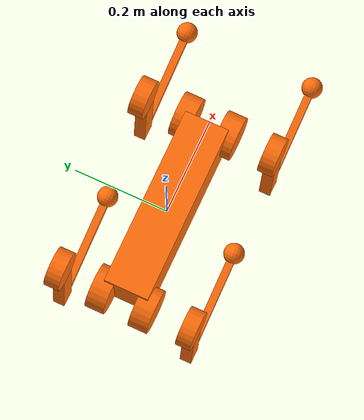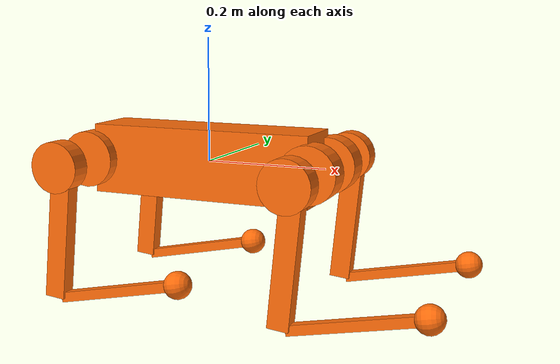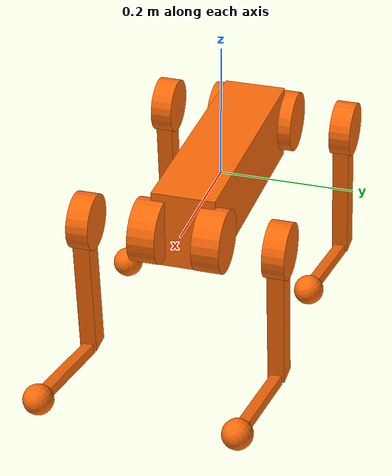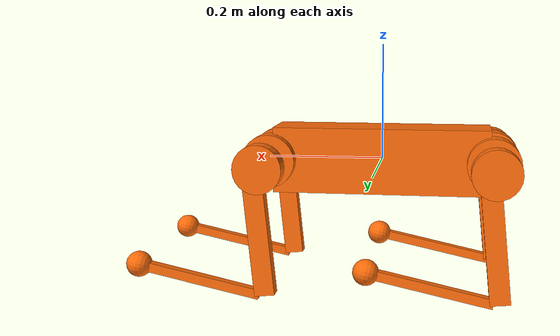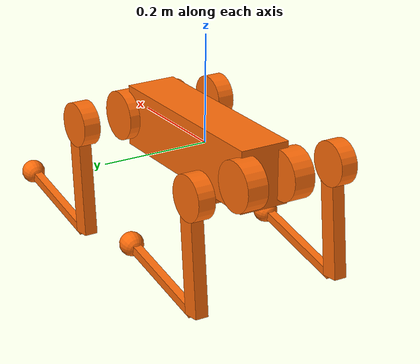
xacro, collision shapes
<?xml version="1.0"?>
<robot xmlns:xacro="http://www.ros.org/wiki/xacro" name="robot">
  <xacro:arg name="robot_type" default="go2"/>

  <xacro:include filename="$(find legged_unitree_description)/urdf/common/materials.xacro"/>
  <xacro:include filename="$(find legged_unitree_description)/urdf/common/leg.xacro"/>
  <xacro:include filename="$(find legged_unitree_description)/urdf/common/imu.xacro"/>
  <xacro:include filename="$(find legged_unitree_description)/urdf/common/gazebo_sim.xacro"/>
  <xacro:include filename="$(find legged_unitree_description)/urdf/common/ros2_control_gz.xacro"/>
  <xacro:include filename="$(find legged_unitree_description)/urdf/$(arg robot_type)/const.xacro"/>

  <!-- Gazebo-only passive dynamics. MuJoCo keeps its own MJCF defaults. -->
  <xacro:property name="damping" value="0.1"/>
  <xacro:property name="foot_radius" value="0.022"/>

  <xacro:property name="mesh_path" value="file://$(find legged_unitree_description)/meshes/$(arg robot_type)"/>

  <gazebo>
    <plugin filename="liblegged_unitree_sim.so" name="legged::sim::InitialJointPositionSetter">
      <hold_topic>/legged_initial_pose_hold</hold_topic>
      <initial_hold>false</initial_hold>
      <reset_steps>1</reset_steps>
    </plugin>
  </gazebo>

  <link name="base">
    <visual>
      <origin rpy="0 0 0" xyz="0 0 0"/>
      <geometry>
        <mesh filename="${mesh_path}/trunk.dae" scale="1 1 1"/>
      </geometry>
      <material name="orange"/>
    </visual>
    <collision>
      <origin rpy="0 0 0" xyz="0 0 0"/>
      <geometry>
        <box size="${trunk_length} ${trunk_width} ${trunk_height}"/>
      </geometry>
    </collision>
    <inertial>
      <origin rpy="0 0 0" xyz="${trunk_com_x} ${trunk_com_y} ${trunk_com_z}"/>
      <mass value="${trunk_mass}"/>
      <inertia
        ixx="${trunk_ixx}" ixy="${trunk_ixy}" ixz="${trunk_ixz}"
        iyy="${trunk_iyy}" iyz="${trunk_iyz}" izz="${trunk_izz}"/>
    </inertial>
  </link>

  <xacro:IMU connected_to="base" imu_name="unitree_imu" xyz="0 0 0" rpy="0 0 0"/>

  <xacro:leg prefix="LF" mesh_path="${mesh_path}" mirror="1" mirror_dae="True" front_hind="1" front_hind_dae="True">
    <origin rpy="0 0 0" xyz="${leg_offset_x} ${leg_offset_y} 0"/>
  </xacro:leg>

  <xacro:leg prefix="LH" mesh_path="${mesh_path}" mirror="1" mirror_dae="True" front_hind="-1" front_hind_dae="False">
    <origin rpy="0 0 0" xyz="${-leg_offset_x} ${leg_offset_y} 0"/>
  </xacro:leg>

  <xacro:leg prefix="RF" mesh_path="${mesh_path}" mirror="-1" mirror_dae="False" front_hind="1" front_hind_dae="True">
    <origin rpy="0 0 0" xyz="${leg_offset_x} ${-leg_offset_y} 0"/>
  </xacro:leg>

  <xacro:leg prefix="RH" mesh_path="${mesh_path}" mirror="-1" mirror_dae="False" front_hind="-1" front_hind_dae="False">
    <origin rpy="0 0 0" xyz="${-leg_offset_x} ${-leg_offset_y} 0"/>
  </xacro:leg>

  <xacro:macro name="gazebo_foot_contact" params="prefix topic">
    <gazebo reference="${prefix}_calf">
      <sensor name="${prefix}_foot_contact" type="contact">
        <always_on>true</always_on>
        <update_rate>1000</update_rate>
        <contact>
          <collision>${prefix}_calf_fixed_joint_lump__${prefix}_foot_collision_collision_1</collision>
          <topic>${topic}</topic>
        </contact>
      </sensor>
    </gazebo>
  </xacro:macro>

  <xacro:gazebo_foot_contact prefix="LF" topic="/feet/LF/contacts"/>
  <xacro:gazebo_foot_contact prefix="RF" topic="/feet/RF/contacts"/>
  <!-- Keep the model's hind-leg link names (LH/RH), but expose the same
       rear-left / rear-right topic convention as the reference package. -->
  <xacro:gazebo_foot_contact prefix="LH" topic="/feet/RL/contacts"/>
  <xacro:gazebo_foot_contact prefix="RH" topic="/feet/RR/contacts"/>

  <ros2_control name="legged_imu_sensor" type="sensor">
    <hardware>
      <plugin>legged_unitree_sim/ImuStateSensor</plugin>
    </hardware>
    <sensor name="unitree_imu">
      <state_interface name="orientation.x"/>
      <state_interface name="orientation.y"/>
      <state_interface name="orientation.z"/>
      <state_interface name="orientation.w"/>
      <state_interface name="angular_velocity.x"/>
      <state_interface name="angular_velocity.y"/>
      <state_interface name="angular_velocity.z"/>
      <state_interface name="linear_acceleration.x"/>
      <state_interface name="linear_acceleration.y"/>
      <state_interface name="linear_acceleration.z"/>
      <param name="topic">/gz/imu/data</param>
    </sensor>
  </ros2_control>

  <ros2_control name="legged_contact_sensors" type="sensor">
    <hardware>
      <plugin>legged_unitree_sim/FootContactSensor</plugin>
    </hardware>
    <sensor name="FL_foot_fts">
      <state_interface name="force.x"/>
      <state_interface name="force.y"/>
      <state_interface name="force.z"/>
      <state_interface name="torque.x"/>
      <state_interface name="torque.y"/>
      <state_interface name="torque.z"/>
      <param name="topic">/feet/LF/contacts</param>
      <param name="collision">LF_calf_fixed_joint_lump__LF_foot_collision_collision_1</param>
    </sensor>
    <sensor name="FR_foot_fts">
      <state_interface name="force.x"/>
      <state_interface name="force.y"/>
      <state_interface name="force.z"/>
      <state_interface name="torque.x"/>
      <state_interface name="torque.y"/>
      <state_interface name="torque.z"/>
      <param name="topic">/feet/RF/contacts</param>
      <param name="collision">RF_calf_fixed_joint_lump__RF_foot_collision_collision_1</param>
    </sensor>
    <sensor name="RL_foot_fts">
      <state_interface name="force.x"/>
      <state_interface name="force.y"/>
      <state_interface name="force.z"/>
      <state_interface name="torque.x"/>
      <state_interface name="torque.y"/>
      <state_interface name="torque.z"/>
      <param name="topic">/feet/RL/contacts</param>
      <param name="collision">LH_calf_fixed_joint_lump__LH_foot_collision_collision_1</param>
    </sensor>
    <sensor name="RR_foot_fts">
      <state_interface name="force.x"/>
      <state_interface name="force.y"/>
      <state_interface name="force.z"/>
      <state_interface name="torque.x"/>
      <state_interface name="torque.y"/>
      <state_interface name="torque.z"/>
      <param name="topic">/feet/RR/contacts</param>
      <param name="collision">RH_calf_fixed_joint_lump__RH_foot_collision_collision_1</param>
    </sensor>
  </ros2_control>

</robot>

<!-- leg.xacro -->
<robot xmlns:xacro="http://www.ros.org/wiki/xacro">

    <xacro:include filename="$(find legged_unitree_description)/urdf/common/transmission.xacro"/>

    <xacro:macro name="leg" params="prefix mesh_path mirror mirror_dae front_hind front_hind_dae *origin">

        <joint name="${prefix}_HAA" type="revolute">
            <xacro:insert_block name="origin"/>
            <parent link="base"/>
            <child link="${prefix}_hip"/>
            <axis xyz="1 0 0"/>
            <dynamics damping="${damping}" friction="${friction}"/>
            <xacro:if value="${(mirror_dae == True)}">
                <limit effort="${hip_torque_max}" velocity="${hip_velocity_max}" lower="${hip_position_min}"
                       upper="${hip_position_max}"/>
            </xacro:if>
            <xacro:if value="${(mirror_dae == False)}">
                <limit effort="${hip_torque_max}" velocity="${hip_velocity_max}" lower="${-hip_position_max}"
                       upper="${-hip_position_min}"/>
            </xacro:if>
        </joint>

        <link name="${prefix}_hip">
            <visual>
                <xacro:if value="${(mirror_dae == True) and (front_hind_dae == True)}">
                    <origin rpy="0 0 0" xyz="0 0 0"/>
                </xacro:if>
                <xacro:if value="${(mirror_dae == False) and (front_hind_dae == True)}">
                    <origin rpy="${pi} 0 0" xyz="0 0 0"/>
                </xacro:if>
                <xacro:if value="${(mirror_dae == True) and (front_hind_dae == False)}">
                    <origin rpy="0 ${pi} 0" xyz="0 0 0"/>
                </xacro:if>
                <xacro:if value="${(mirror_dae == False) and (front_hind_dae == False)}">
                    <origin rpy="${pi} ${pi} 0" xyz="0 0 0"/>
                </xacro:if>
                <geometry>
                    <mesh filename="${mesh_path}/hip.dae"
                          scale="1 1 1"/>
                </geometry>
                <material name="orange"/>
            </visual>
            <collision>
                <origin rpy="${pi/2.0} 0 0" xyz="0 0 0"/>
                <geometry>
                    <cylinder length="${hip_length}" radius="${hip_radius}"/>
                </geometry>
            </collision>
            <inertial>
                <origin rpy="0 0 0" xyz="${hip_com_x*front_hind} ${hip_com_y*mirror} ${hip_com_z}"/>
                <mass value="${hip_mass}"/>
                <inertia
                        ixx="${hip_ixx}" ixy="${hip_ixy*mirror*front_hind}" ixz="${hip_ixz*front_hind}"
                        iyy="${hip_iyy}" iyz="${hip_iyz*mirror}"
                        izz="${hip_izz}"/>
            </inertial>
        </link>

        <joint name="${prefix}_HFE" type="revolute">
            <origin rpy="0 0 0" xyz="0 ${thigh_offset*mirror} 0"/>
            <parent link="${prefix}_hip"/>
            <child link="${prefix}_thigh"/>
            <axis xyz="0 1 0"/>
            <dynamics damping="${damping}" friction="${friction}"/>
            <limit effort="${thigh_torque_max}" velocity="${thigh_velocity_max}" lower="${thigh_position_min}"
                   upper="${thigh_position_max}"/>
        </joint>

        <link name="${prefix}_thigh">
            <visual>
                <origin rpy="0 0 0" xyz="0 0 0"/>
                <geometry>
                    <xacro:if value="${mirror_dae == True}">
                        <mesh filename="${mesh_path}/thigh.dae"
                              scale="1 1 1"/>
                    </xacro:if>
                    <xacro:if value="${mirror_dae == False}">
                        <mesh filename="${mesh_path}/thigh_mirror.dae"
                              scale="1 1 1"/>
                    </xacro:if>
                </geometry>
                <material name="orange"/>
            </visual>
            <collision>
                <origin rpy="0 ${pi/2.0+0.1} 0" xyz="${thigh_x_offset} 0 ${-thigh_length/2.0}"/>
                <geometry>
                    <box size="${thigh_length} ${thigh_width} ${thigh_height}"/>
                </geometry>
            </collision>
            <collision>
                <origin rpy="${pi/2.0} 0 0" xyz="0 ${mirror*thigh_shoulder_y_offset} 0"/>
                <geometry>
                    <cylinder length="${thigh_shoulder_length}" radius="${thigh_shoulder_radius}"/>
                </geometry>
            </collision>
            <inertial>
                <origin rpy="0 0 0" xyz="${thigh_com_x} ${thigh_com_y*mirror} ${thigh_com_z}"/>
                <mass value="${thigh_mass}"/>
                <inertia
                        ixx="${thigh_ixx}" ixy="${thigh_ixy*mirror}" ixz="${thigh_ixz}"
                        iyy="${thigh_iyy}" iyz="${thigh_iyz*mirror}"
                        izz="${thigh_izz}"/>
            </inertial>
        </link>

        <joint name="${prefix}_KFE" type="revolute">
            <origin rpy="0 0 0" xyz="0 0 ${-thigh_length}"/>
            <parent link="${prefix}_thigh"/>
            <child link="${prefix}_calf"/>
            <axis xyz="0 1 0"/>
            <dynamics damping="${damping}" friction="${friction}"/>
            <limit effort="${calf_torque_max}" velocity="${calf_velocity_max}" lower="${calf_position_min}" upper="${calf_position_max}"/>
        </joint>

        <link name="${prefix}_calf">
            <visual>
                <origin rpy="0 0 0" xyz="0 0 0"/>
                <geometry>
                    <mesh filename="${mesh_path}/calf.dae"
                          scale="1 1 1"/>
                </geometry>
                <material name="orange"/>
            </visual>
            <collision>
                <origin rpy="0 ${pi/2.0} 0" xyz="${calf_x_offset} 0 ${-calf_length/2.0}"/>
                <geometry>
                    <box size="${calf_length} ${calf_width} ${calf_height}"/>
                </geometry>
            </collision>
            <inertial>
                <origin rpy="0 0 0" xyz="${calf_com_x} ${calf_com_y} ${calf_com_z}"/>
                <mass value="${calf_mass}"/>
                <inertia
                        ixx="${calf_ixx}" ixy="${calf_ixy}" ixz="${calf_ixz}"
                        iyy="${calf_iyy}" iyz="${calf_iyz}"
                        izz="${calf_izz}"/>
            </inertial>
        </link>

        <joint name="${prefix}_foot_fixed" type="fixed">
            <origin rpy="0 0 0" xyz="0 0 ${-(calf_length)}"/>
            <parent link="${prefix}_calf"/>
            <child link="${prefix}_FOOT"/>
        </joint>

        <link name="${prefix}_FOOT">
            <visual>
                <origin rpy="0 0 0" xyz="0 0 0"/>
                <geometry>
                    <sphere radius="${foot_radius-0.01}"/>
                </geometry>
                <material name="orange"/>
            </visual>
            <collision name="${prefix}_foot_collision">
                <origin rpy="0 0 0" xyz="0 0 0"/>
                <geometry>
                    <sphere radius="${foot_radius}"/>
                </geometry>
            </collision>
            <inertial>
                <mass value="${foot_mass}"/>
                <inertia
                        ixx="${(2*foot_mass)/5.0*(foot_radius*foot_radius)}" ixy="0.0" ixz="0.0"
                        iyy="${(2*foot_mass)/5.0*(foot_radius*foot_radius)}" iyz="0.0"
                        izz="${(2*foot_mass)/5.0*(foot_radius*foot_radius)}"/>
            </inertial>
        </link>

        <gazebo reference="${prefix}_hip">
            <mu1>0.2</mu1>
            <mu2>0.2</mu2>
            <material>Gazebo/DarkGrey</material>
        </gazebo>
        <gazebo reference="${prefix}_thigh">
            <mu1>0.2</mu1>
            <mu2>0.2</mu2>
            <self_collide>0</self_collide>
            <material>Gazebo/DarkGrey</material>
            <kp value="1000000.0"/>
            <kd value="100.0"/>
        </gazebo>
        <gazebo reference="${prefix}_calf">
            <mu1>0.2</mu1>
            <mu2>0.2</mu2>
            <self_collide>1</self_collide>
        </gazebo>
        <gazebo reference="${prefix}_FOOT">
            <mu1>0.6</mu1>
            <mu2>0.6</mu2>
            <self_collide>1</self_collide>
            <material>Gazebo/DarkGrey</material>
            <kp value="1000000.0"/>
            <kd value="100.0"/>
        </gazebo>

    </xacro:macro>
</robot>

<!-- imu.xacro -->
<robot xmlns:xacro="http://www.ros.org/wiki/xacro" name="imu">
    <xacro:macro name="IMU" params="connected_to imu_name xyz:='0 0 0' rpy:='0 0 0' ">
        <!-- Imu is fixed to the base link -->
        <joint name="${imu_name}_joint" type="fixed">
            <origin xyz="${xyz}" rpy="${rpy}"/>
            <parent link="${connected_to}"/>
            <child link="${imu_name}"/>
        </joint>
        <!-- Imu link -->
        <link name="${imu_name}">
            <inertial>
                <mass value="0.01"/>
                <origin rpy="0 0 0" xyz="0 0 0"/>
                <inertia ixx="0.0001" ixy="0" ixz="0" iyy="0.0001" iyz="0" izz="0.0001"/>
            </inertial>
            <visual>
                <origin rpy="0 0 0" xyz="0 0 0"/>
                <geometry>
                    <box size="0.001 0.001 0.001"/>
                </geometry>
            </visual>
            <collision>
            	<origin rpy="0 0 0" xyz="0 0 0"/>
            	<geometry>
                 <box size=".001 .001 .001"/>
            	</geometry>
            </collision>
            <material name="orange">
                <color rgba="255 108 10 255"/>
            </material>
        </link>
        <gazebo reference="${imu_name}">
            <material>Gazebo/Orange</material>
        </gazebo>
        <gazebo reference="${imu_name}_joint">
            <disableFixedJointLumping>true</disableFixedJointLumping>
        </gazebo>
    </xacro:macro>
</robot>

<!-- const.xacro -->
<robot xmlns:xacro="http://www.ros.org/wiki/xacro">

    <!-- Constants for robot dimensions -->
    <xacro:property name="PI" value="3.1415926535897931"/>
    <xacro:property name="stick_mass" value="0.00001"/>

    <!-- simplified collision value -->
    <xacro:property name="trunk_width" value="0.0935"/>
    <xacro:property name="trunk_length" value="0.3762"/>
    <xacro:property name="trunk_height" value="0.114"/>
    <xacro:property name="hip_radius" value="0.046"/>
    <xacro:property name="hip_length" value="0.04"/>
    <xacro:property name="thigh_shoulder_radius" value="0.041"/>
    <xacro:property name="thigh_shoulder_length" value="0.032"/>

    <xacro:property name="thigh_width" value="0.0245"/>
    <xacro:property name="thigh_height" value="0.034"/>

    <!--add from go1 -->
    <xacro:property name="thigh_x_offset" value="0"/>
    <xacro:property name="thigh_shoulder_y_offset" value="0"/>
    <xacro:property name="calf_x_offset" value="0.0"/>

    <xacro:property name="calf_width" value="0.016"/>
    <xacro:property name="calf_height" value="0.016"/>
    <xacro:property name="foot_radius" value="0.02"/>
    <xacro:property name="stick_radius" value="0.01"/>
    <xacro:property name="stick_length" value="0.2"/>

    <!-- kinematic value -->
    <xacro:property name="thigh_offset" value="0.0955"/>
    <xacro:property name="thigh_length" value="0.213"/>
    <xacro:property name="calf_length" value="0.213"/>

    <!-- leg offset from trunk center value -->
    <xacro:property name="leg_offset_x" value="0.1934"/>
    <xacro:property name="leg_offset_y" value="0.0465"/>
    <xacro:property name="trunk_offset_z" value="0.01675"/>
    <xacro:property name="hip_offset" value="0.0955"/>

    <!-- offset of link locations (left front) -->
    <xacro:property name="hip_offset_x" value="0.1934"/>
    <xacro:property name="hip_offset_y" value="0.0465"/>
    <xacro:property name="hip_offset_z" value="0.0"/>

    <xacro:property name="thigh_offset_x" value="0"/>
    <xacro:property name="thigh_offset_y" value="0.0955"/>
    <xacro:property name="thigh_offset_z" value="0.0"/>

    <xacro:property name="calf_offset_x" value="0.0"/>
    <xacro:property name="calf_offset_y" value="0.0"/>
    <xacro:property name="calf_offset_z" value="-0.213"/>

    <!-- joint limits -->
    <xacro:property name="damping" value="0.01"/>
    <xacro:property name="friction" value="0.2"/>
    <xacro:property name="hip_position_max" value="1.0472"/>
    <xacro:property name="hip_position_min" value="-1.0472"/>
    <xacro:property name="hip_velocity_max" value="30.1"/>
    <xacro:property name="hip_torque_max" value="23.7"/>
    <xacro:property name="thigh_position_max" value="3.4907"/>
    <xacro:property name="thigh_position_min" value="-1.5708"/>
    <xacro:property name="thigh_velocity_max" value="30.1"/>
    <xacro:property name="thigh_torque_max" value="23.7"/>
    <xacro:property name="calf_position_max" value="-0.83776"/>
    <xacro:property name="calf_position_min" value="-2.7227"/>
    <xacro:property name="calf_velocity_max" value="20.06"/>
    <xacro:property name="calf_torque_max" value="35.55"/>

    <!-- dynamics inertial value -->
    <!-- trunk -->
    <xacro:property name="trunk_mass" value="6.921"/>
    <xacro:property name="trunk_com_x" value="0.021112"/>
    <xacro:property name="trunk_com_y" value="0.00"/>
    <xacro:property name="trunk_com_z" value="-0.005366"/>
    <xacro:property name="trunk_ixx" value="0.02448"/>
    <xacro:property name="trunk_ixy" value="0.00012166"/>
    <xacro:property name="trunk_ixz" value="0.0014849"/>
    <xacro:property name="trunk_iyy" value="0.098077"/>
    <xacro:property name="trunk_iyz" value="-3.12E-05"/>
    <xacro:property name="trunk_izz" value="0.107"/>

    <!-- hip (left front) -->
    <xacro:property name="hip_mass" value="0.678"/>
    <xacro:property name="hip_com_x" value="-0.0054"/>
    <xacro:property name="hip_com_y" value="0.00194"/>
    <xacro:property name="hip_com_z" value="-0.000105"/>
    <xacro:property name="hip_ixx" value="0.00048"/>
    <xacro:property name="hip_ixy" value="-3.01E-06"/>
    <xacro:property name="hip_ixz" value="1.11E-06"/>
    <xacro:property name="hip_iyy" value="0.000884"/>
    <xacro:property name="hip_iyz" value="-1.42E-06"/>
    <xacro:property name="hip_izz" value="0.000596"/>

    <!-- thigh -->
    <xacro:property name="thigh_mass" value="1.152"/>
    <xacro:property name="thigh_com_x" value="-0.00374"/>
    <xacro:property name="thigh_com_y" value="-0.0223"/>
    <xacro:property name="thigh_com_z" value="-0.0327"/>
    <xacro:property name="thigh_ixx" value="0.00584"/>
    <xacro:property name="thigh_ixy" value="8.72E-05"/>
    <xacro:property name="thigh_ixz" value="-0.000289"/>
    <xacro:property name="thigh_iyy" value="0.0058"/>
    <xacro:property name="thigh_iyz" value="0.000808"/>
    <xacro:property name="thigh_izz" value="0.00103"/>

    <!-- calf -->
    <xacro:property name="calf_mass" value="0.154"/>
    <xacro:property name="calf_com_x" value="0.00548"/>
    <xacro:property name="calf_com_y" value="-0.000975"/>
    <xacro:property name="calf_com_z" value="-0.115"/>
    <xacro:property name="calf_ixx" value="0.00108"/>
    <xacro:property name="calf_ixy" value="3.4E-07"/>
    <xacro:property name="calf_ixz" value="1.72E-05"/>
    <xacro:property name="calf_iyy" value="0.0011"/>
    <xacro:property name="calf_iyz" value="8.28E-06"/>
    <xacro:property name="calf_izz" value="3.29E-05"/>

    <!-- foot -->
    <xacro:property name="foot_mass" value="0.06"/>

</robot>
